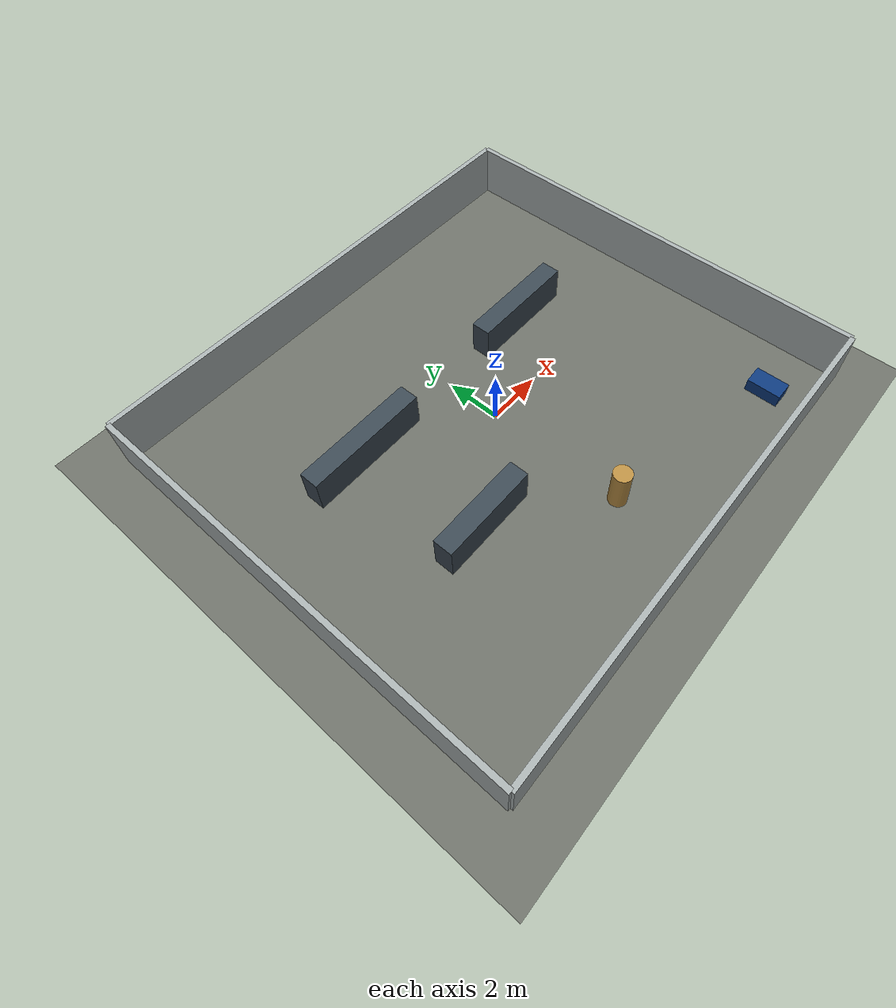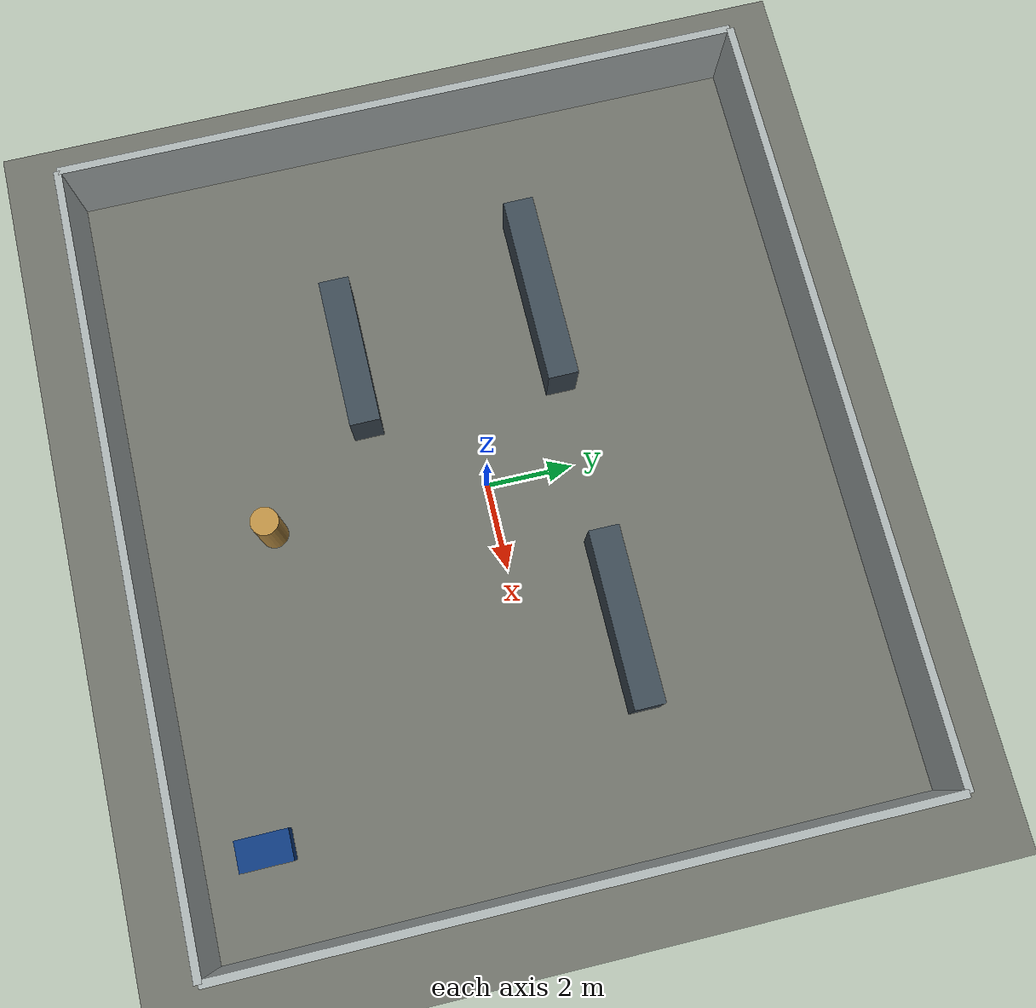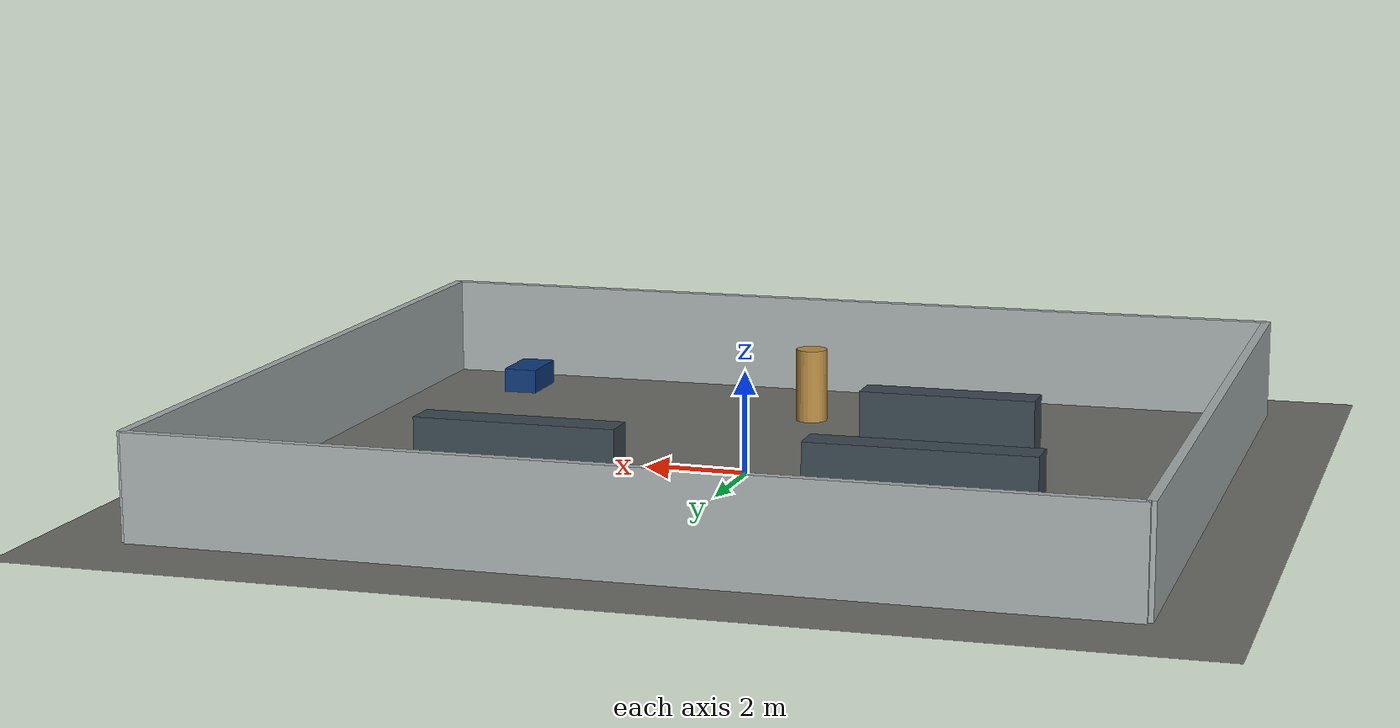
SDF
<?xml version="1.0"?>
<sdf version="1.10">
  <world name="sentinel_warehouse">
    <physics name="1ms" type="ignored">
      <max_step_size>0.001</max_step_size>
      <real_time_factor>1.0</real_time_factor>
    </physics>

    <plugin filename="gz-sim-physics-system" name="gz::sim::systems::Physics"/>
    <plugin filename="gz-sim-user-commands-system" name="gz::sim::systems::UserCommands"/>
    <plugin filename="gz-sim-scene-broadcaster-system" name="gz::sim::systems::SceneBroadcaster"/>
    <plugin filename="gz-sim-sensors-system" name="gz::sim::systems::Sensors">
      <render_engine>ogre2</render_engine>
    </plugin>
    <plugin filename="gz-sim-imu-system" name="gz::sim::systems::Imu"/>
    <plugin filename="gz-sim-contact-system" name="gz::sim::systems::Contact"/>

    <light name="sun" type="directional">
      <cast_shadows>true</cast_shadows>
      <pose>0 0 8 0 0 0</pose>
      <diffuse>0.8 0.8 0.75 1</diffuse>
      <specular>0.2 0.2 0.2 1</specular>
      <direction>-0.4 0.3 -1</direction>
    </light>

    <model name="ground_plane">
      <static>true</static>
      <link name="link">
        <collision name="collision">
          <geometry>
            <plane>
              <normal>0 0 1</normal>
              <size>32 24</size>
            </plane>
          </geometry>
        </collision>
        <visual name="visual">
          <geometry>
            <plane>
              <normal>0 0 1</normal>
              <size>32 24</size>
            </plane>
          </geometry>
          <material>
            <ambient>0.42 0.43 0.40 1</ambient>
            <diffuse>0.42 0.43 0.40 1</diffuse>
          </material>
        </visual>
      </link>
    </model>

    <model name="north_wall">
      <static>true</static>
      <pose>0 8 1 0 0 0</pose>
      <link name="link">
        <collision name="collision">
          <geometry><box><size>18 0.18 2</size></box></geometry>
        </collision>
        <visual name="visual">
          <geometry><box><size>18 0.18 2</size></box></geometry>
          <material><diffuse>0.65 0.68 0.68 1</diffuse></material>
        </visual>
      </link>
    </model>
    <model name="south_wall">
      <static>true</static>
      <pose>0 -8 1 0 0 0</pose>
      <link name="link">
        <collision name="collision">
          <geometry><box><size>18 0.18 2</size></box></geometry>
        </collision>
        <visual name="visual">
          <geometry><box><size>18 0.18 2</size></box></geometry>
          <material><diffuse>0.65 0.68 0.68 1</diffuse></material>
        </visual>
      </link>
    </model>
    <model name="west_wall">
      <static>true</static>
      <pose>-9 0 1 0 0 0</pose>
      <link name="link">
        <collision name="collision">
          <geometry><box><size>0.18 16 2</size></box></geometry>
        </collision>
        <visual name="visual">
          <geometry><box><size>0.18 16 2</size></box></geometry>
          <material><diffuse>0.65 0.68 0.68 1</diffuse></material>
        </visual>
      </link>
    </model>
    <model name="east_wall">
      <static>true</static>
      <pose>9 0 1 0 0 0</pose>
      <link name="link">
        <collision name="collision">
          <geometry><box><size>0.18 16 2</size></box></geometry>
        </collision>
        <visual name="visual">
          <geometry><box><size>0.18 16 2</size></box></geometry>
          <material><diffuse>0.65 0.68 0.68 1</diffuse></material>
        </visual>
      </link>
    </model>

    <model name="rack_a">
      <static>true</static>
      <pose>-4 2.2 0.65 0 0 0</pose>
      <link name="link">
        <collision name="collision">
          <geometry><box><size>4.4 0.7 1.3</size></box></geometry>
        </collision>
        <visual name="visual">
          <geometry><box><size>4.4 0.7 1.3</size></box></geometry>
          <material><diffuse>0.23 0.28 0.32 1</diffuse></material>
        </visual>
      </link>
    </model>
    <model name="rack_b">
      <static>true</static>
      <pose>3.8 2.2 0.65 0 0 0</pose>
      <link name="link">
        <collision name="collision">
          <geometry><box><size>4.0 0.7 1.3</size></box></geometry>
        </collision>
        <visual name="visual">
          <geometry><box><size>4.0 0.7 1.3</size></box></geometry>
          <material><diffuse>0.23 0.28 0.32 1</diffuse></material>
        </visual>
      </link>
    </model>
    <model name="rack_c">
      <static>true</static>
      <pose>-3.5 -2.4 0.65 0 0 0</pose>
      <link name="link">
        <collision name="collision">
          <geometry><box><size>3.5 0.7 1.3</size></box></geometry>
        </collision>
        <visual name="visual">
          <geometry><box><size>3.5 0.7 1.3</size></box></geometry>
          <material><diffuse>0.23 0.28 0.32 1</diffuse></material>
        </visual>
      </link>
    </model>
    <model name="charging_dock">
      <static>true</static>
      <pose>6.8 -6.5 0.25 0 0 1.5708</pose>
      <link name="link">
        <collision name="collision">
          <geometry><box><size>1.2 0.7 0.5</size></box></geometry>
        </collision>
        <visual name="visual">
          <geometry><box><size>1.2 0.7 0.5</size></box></geometry>
          <material><diffuse>0.05 0.22 0.48 1</diffuse></material>
        </visual>
      </link>
    </model>
    <model name="inspection_pillar">
      <static>true</static>
      <pose>0 -5.0 0.75 0 0 0</pose>
      <link name="link">
        <collision name="collision">
          <geometry><cylinder><radius>0.32</radius><length>1.5</length></cylinder></geometry>
        </collision>
        <visual name="visual">
          <geometry><cylinder><radius>0.32</radius><length>1.5</length></cylinder></geometry>
          <material><diffuse>0.72 0.55 0.26 1</diffuse></material>
        </visual>
      </link>
    </model>
  </world>
</sdf>
